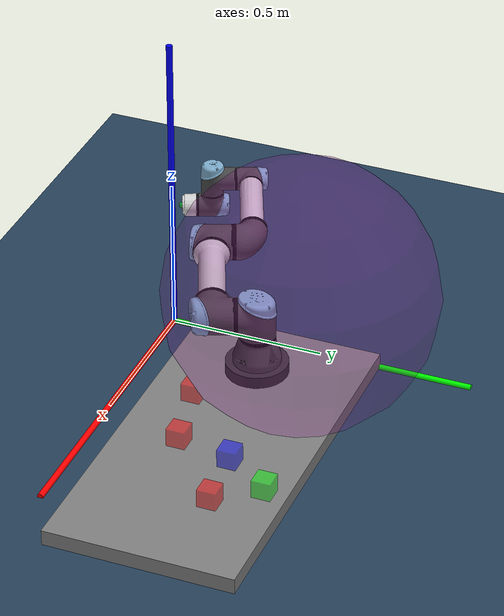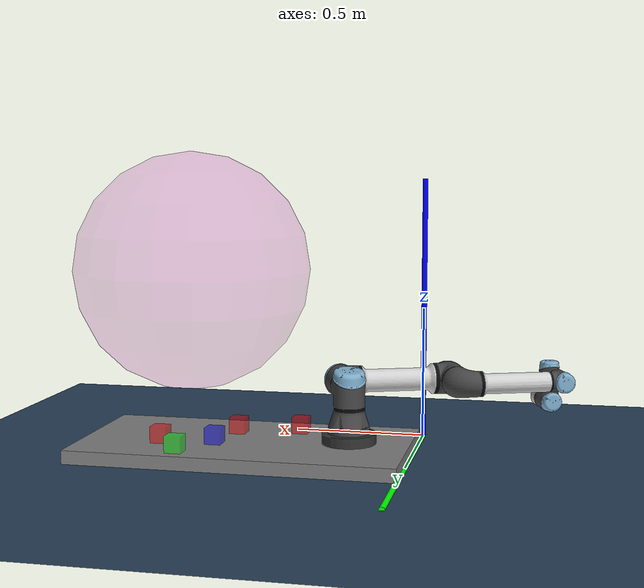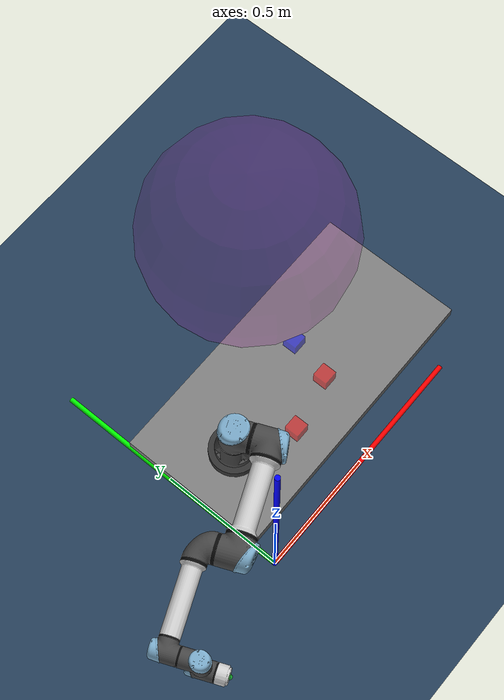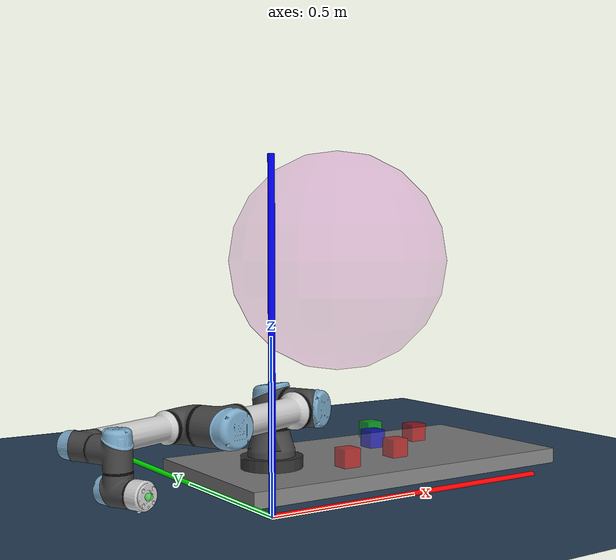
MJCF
<mujoco model="demo scene">

	<compiler angle="radian" autolimits="true" />
	<option timestep="0.002" integrator="implicitfast" solver="PGS" gravity="0 0 0"
		cone="elliptic" />

	<!-- gravity="0 0 -9.82" -->

	<include file="../assets/universal_robots_ur5e/ur5e_2_joints.xml" />
	<include file="../assets/robotiq_2f85/2f85.xml" />
	<include file="../assets/universal_robots_ur5e/mounting_plate.xml" />
	<include file="../assets/universal_robots_ur5e/flexcell_tables.xml" />

	<statistic center="0.3 0 0.3" extent="0.8" meansize="0.08" />

	<visual>
		<headlight diffuse="0.6 0.6 0.6" ambient="0.1 0.1 0.1" specular="0 0 0" />
		<rgba haze="0.15 0.25 0.35 1" />
		<global azimuth="120" elevation="-20" />
	</visual>

	<asset>
		<texture type="skybox" builtin="gradient" rgb1="0.3 0.5 0.7" rgb2="0 0 0" width="512"
			height="3072" />
		<texture type="2d" name="groundplane" builtin="checker" mark="edge" rgb1="0.2 0.3 0.4"
			rgb2="0.1 0.2 0.3" markrgb="0.8 0.8 0.8" width="300" height="300" />
		<material name="groundplane" texture="groundplane" texuniform="true" texrepeat="5 5"
			reflectance="0.2" />
	</asset>

	<worldbody>

		<body name="red1" pos="0.9 0.50 0.08" quat="1 0 0 0">
			<joint name="r1" type="free" />
			<geom type="box" mass="0.4" size="0.03 0.03 0.03" rgba="1 0 0 0.5" group="1"/>
			<inertial pos="0 0 0" mass="0.2" diaginertia="0.001 0.001 0.001" />
		</body>

		<body name="green1" pos="0.8 0.63 0.08" quat="1 0 0 0">
			<joint name="g1" type="free" />
			<geom type="box" mass="0.4" size="0.03 0.03 0.03" rgba="0 1 0 0.5" group="1"/>
			<inertial pos="0 0 0" mass="0.2" diaginertia="0.001 0.001 0.001" />
		</body>

		<body name="blue1" pos="0.7 0.48 0.08" quat="1 0 0 0">
			<joint name="b1" type="free" />
			<geom type="box" mass="0.4" size="0.03 0.03 0.03" rgba="0 0 1 0.5" group="1"/>
			<inertial pos="0 0 0" mass="0.2" diaginertia="0.001 0.001 0.001" />
		</body>

		<body name="red2" pos="0.66 0.30 0.08" quat="1 0 0 0">
			<joint name="r2" type="free" />
			<geom type="box" mass="0.4" size="0.03 0.03 0.03" rgba="1 0 0 0.5" group="1"/>
			<inertial pos="0 0 0" mass="0.2" diaginertia="0.001 0.001 0.001" />
		</body>

		<body name="red3" pos="0.43 0.25 0.08" quat="1 0 0 0">
			<joint name="r3" type="free" />
			<geom type="box" mass="0.4" size="0.03 0.03 0.03" rgba="1 0 0 0.5" group="1"/>
			<inertial pos="0 0 0" mass="0.2" diaginertia="0.001 0.001 0.001" />
		</body>

		<body name="nocollide_box" pos="0.7 0.7 0.7">
    		<geom name="box_geom" type="sphere" size="0.03 0.03 0.03" rgba="0.7 0.7 0 0.5" contype="0" conaffinity="0"/>
		</body>

		<body name="reward_zone" pos="0.7 0.7 0.7">
    		<geom name="reward_zone_sphere" type="sphere" size="0.4 0.4 0.4" rgba="0.7 0.0 0.7 0.2" contype="0" conaffinity="0"/>
		</body>

		<light pos="0 0 1.5" dir="0 0 -1" directional="true" />
		<geom name="floor" size="0 0 0.05" type="plane" material="groundplane" />
		<geom name="x-aixs" group="2" type="cylinder" contype="0" conaffinity="0"
			fromto="0 0 0 1 0 0" size="0.01" rgba="1 0 0 1" />
		<geom name="y-aixs" group="2" type="cylinder" contype="0" conaffinity="0"
			fromto="0 0 0 0 1 0" size="0.01" rgba="0 1 0 1" />
		<geom name="z-aixs" group="2" type="cylinder" contype="0" conaffinity="0"
			fromto="0 0 0 0 0 1" size="0.01" rgba="0 0 1 1" />

		<camera
			name="cam"
			pos="2 1.5 1"
			mode="targetbody"
			target="flexcell_top1"
		/>

		<body name="mocap" mocap="true" pos="0.22331901 0.37537452 0.08791326">
			<geom name="mocap" type="sphere" size="0.001" />
		</body>

	</worldbody>

	<contact>
		<exclude body1="flange" body2="2f85_base" />
		<exclude body1="wrist_3_link" body2="2f85_base" />
		<exclude body1="wrist_2_link" body2="2f85_base" />
		<exclude body1="wrist_2_link" body2="base" />
		<exclude body1="wrist_3_link" body2="base" />
	</contact>

	<equality>
		<weld name="attach" body1="flange" body2="2f85_base" active="false" solref="0.002 2" />
	</equality>

	<!-- Actuated boxes -->
  <actuator>      <!--        ctrl input clamp........................        -->
  </actuator>

</mujoco>

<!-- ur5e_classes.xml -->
<mujocoinclude>
	<default class="ur5e">
		<material specular="0.5" shininess="0.25" />
		<joint axis="0 1 0" range="-6.28319 6.28319" armature="0.1" />
		<general gaintype="fixed" biastype="affine" ctrlrange="-6.2831 6.2831" gainprm="2000"
			biasprm="0 -2000 -400" forcerange="-150 150" />
		<default class="size3">
			<default class="size3_limited">
				<joint range="-3.1415 3.1415" />
				<general ctrlrange="-3.1415 3.1415" />
			</default>
		</default>
		<default class="size1">
			<general gainprm="500" biasprm="0 -500 -100" forcerange="-28 28" />
		</default>
		<default class="visual">
			<geom type="mesh" contype="0" conaffinity="0" group="2" />
		</default>
		<default class="collision">
			<geom type="capsule"  contype="0" conaffinity="0" group="4" />
			<default class="eef_collision">
				<geom type="cylinder" />
			</default>
		</default>
		<site size="0.001" rgba="0.5 0.5 0.5 0.3" group="4" />
	</default>
</mujocoinclude>

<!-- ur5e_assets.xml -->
<mujocoinclude>
	<material name="black" rgba="0.033 0.033 0.033 1" />
	<material name="jointgray" rgba="0.278 0.278 0.278 1" />
	<material name="linkgray" rgba="0.82 0.82 0.82 1" />
	<material name="urblue" rgba="0.49 0.678 0.8 1" />

	<mesh file="../assets/universal_robots_ur5e/assets/base_0.obj" />
	<mesh file="../assets/universal_robots_ur5e/assets/base_1.obj" />
	<mesh file="../assets/universal_robots_ur5e/assets/shoulder_0.obj" />
	<mesh file="../assets/universal_robots_ur5e/assets/shoulder_1.obj" />
	<mesh file="../assets/universal_robots_ur5e/assets/shoulder_2.obj" />
	<mesh file="../assets/universal_robots_ur5e/assets/upperarm_0.obj" />
	<mesh file="../assets/universal_robots_ur5e/assets/upperarm_1.obj" />
	<mesh file="../assets/universal_robots_ur5e/assets/upperarm_2.obj" />
	<mesh file="../assets/universal_robots_ur5e/assets/upperarm_3.obj" />
	<mesh file="../assets/universal_robots_ur5e/assets/forearm_0.obj" />
	<mesh file="../assets/universal_robots_ur5e/assets/forearm_1.obj" />
	<mesh file="../assets/universal_robots_ur5e/assets/forearm_2.obj" />
	<mesh file="../assets/universal_robots_ur5e/assets/forearm_3.obj" />
	<mesh file="../assets/universal_robots_ur5e/assets/wrist1_0.obj" />
	<mesh file="../assets/universal_robots_ur5e/assets/wrist1_1.obj" />
	<mesh file="../assets/universal_robots_ur5e/assets/wrist1_2.obj" />
	<mesh file="../assets/universal_robots_ur5e/assets/wrist2_0.obj" />
	<mesh file="../assets/universal_robots_ur5e/assets/wrist2_1.obj" />
	<mesh file="../assets/universal_robots_ur5e/assets/wrist2_2.obj" />
	<mesh file="../assets/universal_robots_ur5e/assets/wrist3.obj" />
</mujocoinclude>

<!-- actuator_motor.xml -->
<mujocoinclude>
	<!-- https://www.universal-robots.com/articles/ur/robot-care-maintenance/max-joint-torques-cb3-and-e-series/ -->
	<motor name="ur5e_shoulder_pan"  joint="shoulder_pan"  ctrlrange="-1000000 1000000"/>
    <motor name="ur5e_shoulder_lift" joint="shoulder_lift" ctrlrange="-1000000 1000000"/>
    <motor name="ur5e_elbow"         joint="elbow"         ctrlrange="-1000000 1000000"/>
    <motor name="ur5e_wrist_1"       joint="wrist_1"       ctrlrange="-1000000 1000000"/>
    <motor name="ur5e_wrist_2"       joint="wrist_2"       ctrlrange="-1000000 1000000"/>
    <motor name="ur5e_wrist_3"       joint="wrist_3"       ctrlrange="-1000000 1000000"/>
</mujocoinclude>

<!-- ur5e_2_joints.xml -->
<mujoco model="ur5e">

  <default>
    <include file="../assets/universal_robots_ur5e/ur5e_classes.xml" />
  </default>

  <asset>
    <include file="../assets/universal_robots_ur5e/ur5e_assets.xml" />
  </asset>

  <worldbody>
    <body name="ur5e_base" childclass="ur5e" pos="0.22331901 0.37537452 0.08791326" quat="-0.19858483999999996 -0.00311175 0.0012299899999999998 0.98007799">

      <inertial mass="4" pos="0 0 0" diaginertia="0.00443333156 0.00443333156 0.0072"/>
      <geom mesh="base_0" material="black" class="visual"/>
      <geom mesh="base_1" material="jointgray" class="visual" />
      <body name="shoulder_link" pos="0 0 0.163">
        <inertial mass="3.7" pos="0 0 0" diaginertia="0.0102675 0.0102675 0.00666"/>
        <joint name="shoulder_pan" axis="0 0 1"  damping=".10"/>
        <geom mesh="shoulder_0" material="urblue" class="visual"/>
        <geom mesh="shoulder_1" material="black" class="visual"/>
        <geom mesh="shoulder_2" material="jointgray" class="visual"/>
        <geom class="collision" size="0.06 0.06" pos="0 0 -0.04"/>
        <body name="upper_arm_link" pos="0 0.138 0" quat="1 0 1 0">
          <inertial mass="8.393" pos="0 0 0.2125" diaginertia="0.133886 0.133886 0.0151074"/>
          <joint name="shoulder_lift" damping=".10"/>
          <geom mesh="upperarm_0" material="linkgray" class="visual"/>
          <geom mesh="upperarm_1" material="black" class="visual"/>
          <geom mesh="upperarm_2" material="jointgray" class="visual"/>
          <geom mesh="upperarm_3" material="urblue" class="visual"/>
          <geom class="collision" pos="0 -0.04 0" quat="1 1 0 0" size="0.06 0.06"/>
          <geom class="collision" size="0.05 0.2" pos="0 0 0.2"/>
          <body name="forearm_link" pos="0 -0.131 0.425">
            <inertial mass="2.275" pos="0 0 0.196" diaginertia="0.0311796 0.0311796 0.004095"/>
            <joint name="elbow" class="size3_limited" damping="1000.10"/> <!-- Restrained joint! -->
            <geom mesh="forearm_0" material="urblue" class="visual"/>
            <geom mesh="forearm_1" material="linkgray" class="visual"/>
            <geom mesh="forearm_2" material="black" class="visual"/>
            <geom mesh="forearm_3" material="jointgray" class="visual"/>
            <geom class="collision" pos="0 0.08 0" quat="1 1 0 0" size="0.055 0.06"/>
            <geom class="collision" size="0.038 0.19" pos="0 0 0.2"/>
            <body name="wrist_1_link" pos="0 0 0.392" quat="1 0 1 0">
              <inertial mass="1.219" pos="0 0.127 0" diaginertia="0.0025599 0.0025599 0.0021942"/>
              <joint name="wrist_1" damping="1000.10"/> <!-- Restrained joint! -->
              <geom mesh="wrist1_0" material="black" class="visual"/>
              <geom mesh="wrist1_1" material="urblue" class="visual"/>
              <geom mesh="wrist1_2" material="jointgray" class="visual"/>
              <geom class="collision" pos="0 0.05 0" quat="1 1 0 0" size="0.04 0.07"/>
              <body name="wrist_2_link" pos="0 0.127 0">
                <inertial mass="1.219" pos="0 0 0.1" diaginertia="0.0025599 0.0025599 0.0021942"/>
                <joint name="wrist_2" axis="0 0 1" damping="1000.10"/> <!-- Restrained joint! -->
                <geom mesh="wrist2_0" material="black" class="visual"/>
                <geom mesh="wrist2_1" material="urblue" class="visual"/>
                <geom mesh="wrist2_2" material="jointgray" class="visual"/>
                <geom name="1" class="collision" size="0.04 0.06" pos="0 0 0.04"/>
                <geom name="2" class="collision" pos="0 0.02 0.1" quat="1 1 0 0" size="0.04 0.04"/>
                <body name="wrist_3_link" pos="0 0 0.1">
                  <inertial mass="0.1879" pos="0 0.0771683 0" quat="1 0 0 1"
                    diaginertia="0.000132134 9.90863e-05 9.90863e-05"/>
                  <joint name="wrist_3" damping="1000.10"/> <!-- Restrained joint! -->
                  <geom name="wrist3" material="linkgray" mesh="wrist3" class="visual" />
                  <geom name="eef_collision" class="eef_collision" pos="0 0.08 0" quat="1 1 0 0"
                    size="0.04 0.02" />

                  <body name="flange" pos="0 0.1 0" quat="1 -1 0 0">
                    <site name="tcp" pos="0 0 0" size="0.01" rgba="0 1 0 0.5" group="2" />
                  </body>

                </body>
              </body>
            </body>
          </body>
        </body>
      </body>
    </body>
  </worldbody>

  <actuator>
    <!-- actuators for position control -->

    <!-- actuators for velocity control -->

    <!-- actuators for torque control -->
    <include file="../assets/universal_robots_ur5e/actuator_motor.xml"/>

  </actuator>

  <sensor>
    <force  name="force"  site="tcp" />
    <torque name="torque" site="tcp" />
  </sensor>

</mujoco>

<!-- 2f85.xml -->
<mujoco model="robotiq_2f85">

  <option cone="elliptic" impratio="10"/>

  <asset>
    <material name="metal" rgba="0.58 0.58 0.58 1"/>
    <material name="silicone" rgba="0.1882 0.1882 0.1882 1"/>
    <material name="gray" rgba="0.4627 0.4627 0.4627 1"/>

    <mesh class="2f85" file="../assets/robotiq_2f85/assets/base_mount.stl"/>
    <mesh class="2f85" file="../assets/robotiq_2f85/assets/base.stl"/>
    <mesh class="2f85" file="../assets/robotiq_2f85/assets/driver.stl"/>
    <mesh class="2f85" file="../assets/robotiq_2f85/assets/coupler.stl"/>
    <mesh class="2f85" file="../assets/robotiq_2f85/assets/follower.stl"/>
    <mesh class="2f85" file="../assets/robotiq_2f85/assets/pad.stl"/>
    <mesh class="2f85" file="../assets/robotiq_2f85/assets/silicone_pad.stl"/>
    <mesh class="2f85" file="../assets/robotiq_2f85/assets/spring_link.stl"/>
  </asset>

  <default>
    <default class="2f85">
      <mesh scale="0.001 0.001 0.001"/>
      <general biastype="affine"/>

      <joint axis="1 0 0"/>
      <default class="driver">
        <joint range="0 0.8" armature="0.005" damping="0.1" solimplimit="0.95 0.99 0.001" solreflimit="0.005 1"/>
      </default>
      <default class="follower">
        <joint range="-0.872664 0.872664" pos="0 -0.018 0.0065" solimplimit="0.95 0.99 0.001" solreflimit="0.005 1"/>
      </default>
      <default class="spring_link">
        <joint range="-0.29670597283 0.8" stiffness="0.05" springref="2.62" damping="0.00125"/>
      </default>
      <default class="coupler">
        <joint range="-1.57 0" solimplimit="0.95 0.99 0.001" solreflimit="0.005 1"/>
      </default>

      <default class="visual2">
        <geom type="mesh" contype="0" conaffinity="0" group="2"/>
      </default>
      <default class="collision2">
        <geom type="mesh" group="3"/>
        <default class="pad_box1">
          <geom mass="0" type="box" pos="0 -0.0026 0.028125" size="0.011 0.004 0.009375"
            friction="0.7 0.7 0.7" condim="6"
            solimp="0.95 0.99 0.001" solref="0.004 1" priority="1" rgba="0.55 0.55 0.55 1" />
        </default>
        <default class="pad_box2">
          <geom mass="0" type="box" pos="0 -0.0026 0.009375" size="0.011 0.004 0.009375"
            friction="0.7 0.7 0.7" condim="6"
            solimp="0.95 0.99 0.001" solref="0.004 1" priority="1" rgba="0.45 0.45 0.45 1" />
        </default>
      </default>
    </default>
  </default>

  <worldbody>
    <body name="2f85_base" pos="1 0 0.2" childclass="2f85">
      <joint name="2f85" type="free" />
      <geom class="visual" mesh="base_mount" material="black"/>
      <geom name="base_mount" class="collision" mesh="base_mount"/>
      <body name="base" pos="0 0 0.0038" quat="1 0 0 -1">
        <inertial mass="0.777441" pos="0 -2.70394e-05 0.0354675" quat="1 -0.00152849 0 0"
          diaginertia="0.000260285 0.000225381 0.000152708"/>
        <geom class="visual" mesh="base" material="black"/>
        <geom name="base" class="collision" mesh="base"/>
        <site name="pinch" pos="0 0 0.145" type="sphere" group="5" rgba="0.9 0.9 0.9 1" size="0.005"/>
        <!-- Right-hand side 4-bar linkage -->
        <body name="right_driver" pos="0 0.0306011 0.054904">
          <inertial mass="0.00899563" pos="2.96931e-12 0.0177547 0.00107314" quat="0.681301 0.732003 0 0"
            diaginertia="1.72352e-06 1.60906e-06 3.22006e-07"/>
          <joint name="right_driver_joint" class="driver"/>
          <geom class="visual" mesh="driver" material="gray"/>
          <geom class="collision" mesh="driver"/>
          <body name="right_coupler" pos="0 0.0315 -0.0041">
            <inertial mass="0.0140974" pos="0 0.00301209 0.0232175" quat="0.705636 -0.0455904 0.0455904 0.705636"
              diaginertia="4.16206e-06 3.52216e-06 8.88131e-07"/>
            <joint name="right_coupler_joint" class="coupler"/>
            <geom class="visual" mesh="coupler" material="black"/>
            <geom class="collision" mesh="coupler"/>
          </body>
        </body>
        <body name="right_spring_link" pos="0 0.0132 0.0609">
          <inertial mass="0.0221642" pos="-8.65005e-09 0.0181624 0.0212658" quat="0.663403 -0.244737 0.244737 0.663403"
            diaginertia="8.96853e-06 6.71733e-06 2.63931e-06"/>
          <joint name="right_spring_link_joint" class="spring_link"/>
          <geom class="visual" mesh="spring_link" material="black"/>
          <geom name="spring_link" class="collision" mesh="spring_link" />
          <body name="right_follower" pos="0 0.055 0.0375">
            <inertial mass="0.0125222" pos="0 -0.011046 0.0124786" quat="1 0.1664 0 0"
              diaginertia="2.67415e-06 2.4559e-06 6.02031e-07"/>
            <joint name="right_follower_joint" class="follower"/>
            <geom class="visual" mesh="follower" material="black"/>
            <geom class="collision" mesh="follower"/>
            <body name="right_pad" pos="0 -0.0189 0.01352">
              <geom class="pad_box1" name="right_pad1"/>
              <geom class="pad_box2" name="right_pad2"/>
              <inertial mass="0.0035" pos="0 -0.0025 0.0185" quat="0.707107 0 0 0.707107"
                diaginertia="4.73958e-07 3.64583e-07 1.23958e-07"/>
              <geom class="visual" mesh="pad"/>
              <body name="right_silicone_pad">
                <geom class="visual" mesh="silicone_pad" material="black"/>
              </body>
            </body>
          </body>
        </body>
        <!-- Left-hand side 4-bar linkage -->
        <body name="left_driver" pos="0 -0.0306011 0.054904" quat="0 0 0 1">
          <inertial mass="0.00899563" pos="0 0.0177547 0.00107314" quat="0.681301 0.732003 0 0"
            diaginertia="1.72352e-06 1.60906e-06 3.22006e-07"/>
          <joint name="left_driver_joint" class="driver"/>
          <geom class="visual" mesh="driver" material="gray"/>
          <geom class="collision" mesh="driver"/>
          <body name="left_coupler" pos="0 0.0315 -0.0041">
            <inertial mass="0.0140974" pos="0 0.00301209 0.0232175" quat="0.705636 -0.0455904 0.0455904 0.705636"
              diaginertia="4.16206e-06 3.52216e-06 8.88131e-07"/>
            <joint name="left_coupler_joint" class="coupler"/>
            <geom class="visual" mesh="coupler" material="black"/>
            <geom class="collision" mesh="coupler"/>
          </body>
        </body>
        <body name="left_spring_link" pos="0 -0.0132 0.0609" quat="0 0 0 1">
          <inertial mass="0.0221642" pos="-8.65005e-09 0.0181624 0.0212658" quat="0.663403 -0.244737 0.244737 0.663403"
            diaginertia="8.96853e-06 6.71733e-06 2.63931e-06"/>
          <joint name="left_spring_link_joint" class="spring_link"/>
          <geom class="visual" mesh="spring_link" material="black"/>
          <geom class="collision" mesh="spring_link"/>
          <body name="left_follower" pos="0 0.055 0.0375">
            <inertial mass="0.0125222" pos="0 -0.011046 0.0124786" quat="1 0.1664 0 0"
              diaginertia="2.67415e-06 2.4559e-06 6.02031e-07"/>
            <joint name="left_follower_joint" class="follower"/>
            <geom class="visual" mesh="follower" material="black"/>
            <geom class="collision" mesh="follower"/>
            <body name="left_pad" pos="0 -0.0189 0.01352">
              <geom class="pad_box1" name="left_pad1"/>
              <geom class="pad_box2" name="left_pad2"/>
              <inertial mass="0.0035" pos="0 -0.0025 0.0185" quat="1 0 0 1"
                diaginertia="4.73958e-07 3.64583e-07 1.23958e-07"/>
              <geom class="visual" mesh="pad"/>
              <body name="left_silicone_pad">
                <geom class="visual" mesh="silicone_pad" material="black"/>
              </body>
            </body>
          </body>
        </body>
      </body>
    </body>
  </worldbody>

  <contact>
    <exclude body1="base" body2="left_driver"/>
    <exclude body1="base" body2="right_driver"/>
    <exclude body1="base" body2="left_spring_link"/>
    <exclude body1="base" body2="right_spring_link"/>
    <exclude body1="right_coupler" body2="right_follower"/>
    <exclude body1="left_coupler" body2="left_follower"/>
  </contact>

  <tendon>
    <fixed name="split">
      <joint joint="right_driver_joint" coef="0.5"/>
      <joint joint="left_driver_joint" coef="0.5"/>
    </fixed>
  </tendon>

  <equality>
    <connect anchor="0 0 0" body1="right_follower" body2="right_coupler" solimp="0.95 0.99 0.001" solref="0.005 1"/>
    <connect anchor="0 0 0" body1="left_follower" body2="left_coupler" solimp="0.95 0.99 0.001" solref="0.005 1"/>
    <joint joint1="right_driver_joint" joint2="left_driver_joint" polycoef="0 1 0 0 0" solimp="0.95 0.99 0.001"
      solref="0.005 1"/>
  </equality>

  <actuator>
    <general class="2f85" name="2f85_fingers_actuator" tendon="split" forcerange="-20 20" ctrlrange="0 255"
      gainprm="0.3137255 0 0" biasprm="0 -100 -10"/>
  </actuator>
</mujoco>

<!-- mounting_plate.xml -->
<mujocoinclude>
	<worldbody>
		<body name="ur_mounting_plate" pos="0.22331901 0.37537452 0.06895663">
			<geom name="ur_mounting_plate" type="cylinder" size="0.1 0.01895663"  rgba="0.2 0.2 0.2 1" mass="10"/>
		</body>
	</worldbody>
</mujocoinclude>

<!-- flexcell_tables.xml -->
<mujocoinclude>
	<worldbody>
		<body name="flexcell_top1">
			<geom name="flexcell_top1" type="box" size="0.6 0.3 0.025" pos="0.6 0.4 0.025" margin="0.001"
				solref="0.0001 1" solimp="0.9 0.95 0.001 0.5 4" />
		</body>

	</worldbody>
</mujocoinclude>
